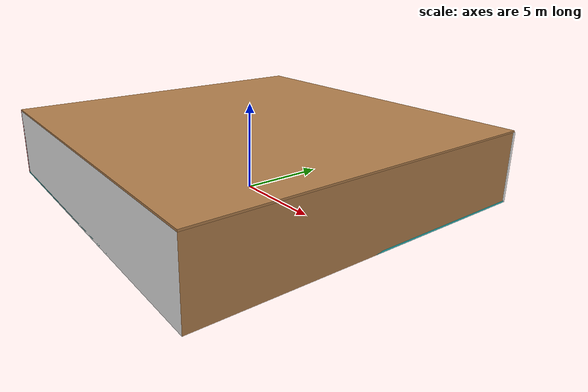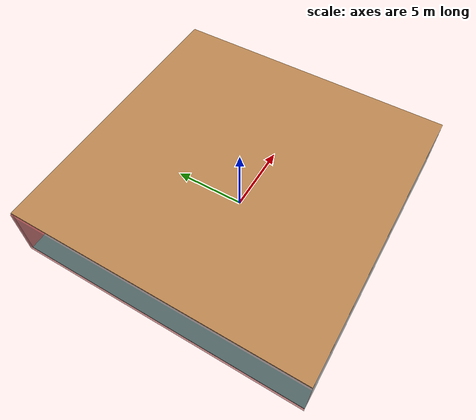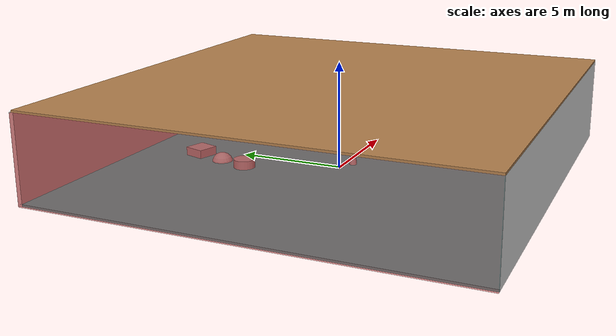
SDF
<sdf version="1.4">
 <world name="default">
  <physics type="ode">
   <max_step_size>0.001</max_step_size>
   <real_time_factor>1</real_time_factor>
   <real_time_update_rate>1000</real_time_update_rate>
   <gravity>0 0 -9.8</gravity>
  </physics>
  <scene><ambient>0.4 0.4 0.4 1</ambient><background>0.7 0.7 0.7 1</background><shadows>1</shadows></scene>
  <model name="Surrounding">
   <static>1</static>
   <link name="Ceiling">
    <collision name="Ceiling_Collision"><geometry><box><size>20 20 0.1</size></box></geometry></collision>
    <visual name="Ceiling_Visual">
     <geometry><box><size>20 20 0.1</size></box></geometry>
     <material>
      <script><uri>file://media/materials/scripts/gazebo.material</uri><name>Gazebo/WoodFloor</name></script>
     </material>
    </visual>
    <pose>0 0 4.05 0 0 0</pose>
   </link>
   <link name="Wall_South">
    <collision name="Wall_South_Collision">
     <geometry><box><size>20 0 4</size></box></geometry>
     <pose>0 0 2 0 -0 0</pose>
    </collision>
    <visual name="Wall_South_Visual">
     <pose>0 0 2 0 -0 0</pose>
     <geometry><box><size>20 0 4</size></box></geometry>
     <material>
      <script><uri>file://media/materials/scripts/gazebo.material</uri><name>Gazebo/White</name></script>
     </material>
    </visual>
    <velocity_decay><linear>0</linear><angular>0</angular></velocity_decay>
    <pose>0 -10 0 0 -0 0</pose>
   </link>
   <link name="Wall_East">
    <collision name="Wall_21_Collision">
     <geometry><box><size>20 0 4</size></box></geometry>
     <pose>0 0 2 0 -0 0</pose>
    </collision>
    <visual name="Wall_21_Visual">
     <pose>0 0 2 0 -0 0</pose>
     <geometry><box><size>20 0 4</size></box></geometry>
     <material>
      <script><uri>file://media/materials/scripts/gazebo.material</uri><name>Gazebo/WoodFloor</name></script>
     </material>
    </visual>
    <velocity_decay><linear>0</linear><angular>0</angular></velocity_decay>
    <pose>10 0 0 0 -0 1.5708</pose>
   </link>
   <link name="Wall_North">
    <collision name="Wall_22_Collision">
     <geometry><box><size>20 0.2 4</size></box></geometry>
     <pose>0 0 2 0 -0 0</pose>
    </collision>
    <visual name="Wall_22_Visual">
     <pose>0 0 2 0 -0 0</pose>
     <geometry><box><size>20 0.2 4</size></box></geometry>
     <material>
      <script><uri>file://media/materials/scripts/gazebo.material</uri><name>Gazebo/WhiteGlow</name></script>
     </material>
    </visual>
    <velocity_decay><linear>0</linear><angular>0</angular></velocity_decay>
    <pose>0 10 0 0 -0 0</pose>
   </link>
   <link name="Wall_West">
    <collision name="Wall_23_Collision">
     <geometry><box><size>20 0.2 4</size></box></geometry>
     <pose>0 0 2 0 -0 0</pose>
    </collision>
    <visual name="Wall_23_Visual">
     <pose>0 0 2 0 -0 0</pose>
     <geometry><box><size>20 0.2 4</size></box></geometry>
     <material>
      <script><uri>file://media/materials/scripts/gazebo.material</uri><name>Gazebo/RedTransparent</name></script>
     </material>
    </visual>
    <velocity_decay><linear>0</linear><angular>0</angular></velocity_decay>
    <pose>-10 0 0 0 0 -1.5708</pose>
   </link>
   <link name="Ground_link">
    <collision name="collision">
     <pose>0 0 .05 0 -0 0</pose>
     <geometry><box><size>20 20 0.1</size></box></geometry>
    </collision>
    <visual name="visual">
     <pose>0 0 .05 0 -0 0</pose>
     <geometry><box><size>20 20 0.1</size></box></geometry>
     <material>
      <script><uri>file://media/materials/scripts/gazebo.material</uri><name>Gazebo/TurquoiseGlow</name></script>
     </material>
    </visual>
   </link>
   <static>1</static>
  </model>
  <spherical_coordinates>
   <surface_model>EARTH_WGS84</surface_model>
   <latitude_deg>0</latitude_deg>
   <longitude_deg>0</longitude_deg>
   <elevation>0</elevation>
   <heading_deg>0</heading_deg>
  </spherical_coordinates>
  <light name="lightball_0" type="diffuse">
   <diffuse>0.8 0.8 0.8 1</diffuse>
   <specular>0.2 0.2 0.2 1</specular>
   <attenuation>
    <range>100</range>
    <constant>0.7</constant>
    <linear>0.01</linear>
    <quadratic>0.001</quadratic>
   </attenuation>
   <direction>-0.5 0.1 -0.9</direction>
   <pose>-0.253668050655 -0.817846504832 3.82804158237 0 0 0</pose>
  </light>
  <light name="lightball_1" type="diffuse">
   <diffuse>0.8 0.8 0.8 1</diffuse>
   <specular>0.2 0.2 0.2 1</specular>
   <attenuation>
    <range>100</range>
    <constant>0.7</constant>
    <linear>0.01</linear>
    <quadratic>0.001</quadratic>
   </attenuation>
   <direction>-0.5 0.1 -0.9</direction>
   <pose>-9.08003967556 3.5081120826 3.03444481424 0 0 0</pose>
  </light>
  <light name="lightball_2" type="diffuse">
   <diffuse>0.8 0.8 0.8 1</diffuse>
   <specular>0.2 0.2 0.2 1</specular>
   <attenuation>
    <range>100</range>
    <constant>0.7</constant>
    <linear>0.01</linear>
    <quadratic>0.001</quadratic>
   </attenuation>
   <direction>-0.5 0.1 -0.9</direction>
   <pose>-8.6095262328 6.93349329406 3.20327024749 0 0 0</pose>
  </light>
  <light name="lightball_3" type="diffuse">
   <diffuse>0.8 0.8 0.8 1</diffuse>
   <specular>0.2 0.2 0.2 1</specular>
   <attenuation>
    <range>100</range>
    <constant>0.7</constant>
    <linear>0.01</linear>
    <quadratic>0.001</quadratic>
   </attenuation>
   <direction>-0.5 0.1 -0.9</direction>
   <pose>7.5538057444 6.76337775215 2.80644446523 0 0 0</pose>
  </light>
  <light name="lightball_4" type="diffuse">
   <diffuse>0.8 0.8 0.8 1</diffuse>
   <specular>0.2 0.2 0.2 1</specular>
   <attenuation>
    <range>100</range>
    <constant>0.7</constant>
    <linear>0.01</linear>
    <quadratic>0.001</quadratic>
   </attenuation>
   <direction>-0.5 0.1 -0.9</direction>
   <pose>-6.55019518387 2.82855031341 1.95471982923 0 0 0</pose>
  </light>
  <light name="lightball_5" type="diffuse">
   <diffuse>0.8 0.8 0.8 1</diffuse>
   <specular>0.2 0.2 0.2 1</specular>
   <attenuation>
    <range>100</range>
    <constant>0.7</constant>
    <linear>0.01</linear>
    <quadratic>0.001</quadratic>
   </attenuation>
   <direction>-0.5 0.1 -0.9</direction>
   <pose>5.30359559441 7.0451860124 2.50986170341 0 0 0</pose>
  </light>
  <include>
   <uri>model://textured_shapes</uri>
   <pose>-1.52493397859 5.38670440336 0 0 0 2.84201023585</pose>
  </include>
  <include>
   <uri>model://construction_cone</uri>
   <pose>0.422296444656 -0.530248080333 0 0 0 1.0048518261</pose>
  </include>
  <include>
   <uri>model://robocup_3Dsim_goal</uri>
   <pose>5.48121960039 7.81989681474 0 0 0 0.562033912588</pose>
  </include>
 </world>
</sdf>

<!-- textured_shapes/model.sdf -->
<sdf version="1.6">
  <model name="textured_shapes">
    <pose>0 0 0.5 0 0 0</pose>
    <link name="box">
      <pose>0 -1.5 0 0 0 0</pose>
      <collision name="collision">
        <geometry>
          <box>
            <size>1 1 1</size>
          </box>
        </geometry>
      </collision>
      <visual name="visual">
        <geometry>
          <box>
            <size>1 1 1</size>
          </box>
        </geometry>
        <material>
          <script>
            <uri>model://../model_source/models/textured_shapes/materials/scripts</uri>
            <uri>model://../model_source/models/textured_shapes/materials/textures</uri>
            <name>TexturedShape/Squares</name>
          </script>
        </material>
      </visual>
    </link>
    <link name="sphere">
      <collision name="collision">
        <geometry>
          <sphere>
            <radius>0.5</radius>
          </sphere>
        </geometry>
      </collision>
      <visual name="visual">
        <geometry>
          <sphere>
            <radius>0.5</radius>
          </sphere>
        </geometry>
        <material>
          <script>
            <uri>model://../model_source/models/textured_shapes/materials/scripts</uri>
            <uri>model://../model_source/models/textured_shapes/materials/textures</uri>
            <name>TexturedShape/Squares</name>
          </script>
        </material>
      </visual>
    </link>
    <link name="cylinder">
      <pose>0 1.5 0 0 0 0</pose>
      <collision name="collision">
        <geometry>
          <cylinder>
            <radius>0.5</radius>
            <length>1</length>
          </cylinder>
        </geometry>
      </collision>
      <visual name="visual">
        <geometry>
          <cylinder>
            <radius>0.5</radius>
            <length>1</length>
          </cylinder>
        </geometry>
        <material>
          <script>
            <uri>model://../model_source/models/textured_shapes/materials/scripts</uri>
            <uri>model://../model_source/models/textured_shapes/materials/textures</uri>
            <name>TexturedShape/Squares</name>
          </script>
        </material>
      </visual>
    </link>
  </model>
</sdf>

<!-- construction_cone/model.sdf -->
<sdf version="1.5">
  <model name="Construction Cone">
    <link name="link">
      <collision name="collision">
        <geometry>
          <mesh>
            <scale>10 10 10</scale>
            <uri>file://isr-testbed/construction_cone/meshes/construction_cone.dae</uri>
          </mesh>
        </geometry>
      </collision>
      <visual name="visual">
        <geometry>
          <mesh>
            <scale>10 10 10</scale>
            <uri>file://isr-testbed/construction_cone/meshes/construction_cone.dae</uri>
          </mesh>
        </geometry>
      </visual>
    </link>
  </model>
</sdf>

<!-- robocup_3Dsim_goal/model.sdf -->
<sdf version="1.5">
  <model name="robocup_3d_goal">
    <static>true</static>
    <link name="left_post">
      <pose>0 1.05 0.45 0 0 0</pose>
      <collision name="collision">
        <geometry>
          <cylinder>
            <radius>0.05</radius>
            <length>0.9</length>
          </cylinder>
        </geometry>
      </collision>
      <visual name="visual">
        <geometry>
          <cylinder>
            <radius>0.05</radius>
            <length>0.9</length>
          </cylinder>
        </geometry>
        <material>
          <script>
            <uri>file://media/materials/scripts/gazebo.material</uri>
            <name>Gazebo/ZincYellow</name>
          </script>
        </material>
      </visual>
    </link>
    <link name="left_support_horiz_lower">
      <pose>0.30 1.05 0.01 0 0 0</pose>
      <collision name="collision">
        <geometry>
          <box>
            <size>0.50 0.02 0.02</size>
          </box>
        </geometry>
      </collision>
      <visual name="visual">
        <geometry>
          <box>
            <size>0.50 0.02 0.02</size>
          </box>
        </geometry>
        <material>
          <script>
            <uri>file://media/materials/scripts/gazebo.material</uri>
            <name>Gazebo/White</name>
          </script>
        </material>
      </visual>
    </link>
    <link name="left_support_horiz_upper">
      <pose>0.30 1.05 0.79 0 0 0</pose>
      <collision name="collision">
        <geometry>
          <box>
            <size>0.50 0.02 0.02</size>
          </box>
        </geometry>
      </collision>
      <visual name="visual">
        <geometry>
          <box>
            <size>0.50 0.02 0.02</size>
          </box>
        </geometry>
        <material>
          <script>
            <uri>file://media/materials/scripts/gazebo.material</uri>
            <name>Gazebo/White</name>
          </script>
        </material>
      </visual>
    </link>
    <link name="left_support_vertical">
      <pose>0.56 1.05 0.4 0 1.5708 0</pose>
      <collision name="collision">
        <geometry>
          <box>
            <size>0.80 0.02 0.02</size>
          </box>
        </geometry>
      </collision>
      <visual name="visual">
        <geometry>
          <box>
            <size>0.80 0.02 0.02</size>
          </box>
        </geometry>
        <material>
          <script>
            <uri>file://media/materials/scripts/gazebo.material</uri>
            <name>Gazebo/White</name>
          </script>
        </material>
      </visual>
    </link>
    <link name="right_support_horiz_lower">
      <pose>0.30 -1.05 0.01 0 0 0</pose>
      <collision name="collision">
        <geometry>
          <box>
            <size>0.50 0.02 0.02</size>
          </box>
        </geometry>
      </collision>
      <visual name="visual">
        <geometry>
          <box>
            <size>0.50 0.02 0.02</size>
          </box>
        </geometry>
        <material>
          <script>
            <uri>file://media/materials/scripts/gazebo.material</uri>
            <name>Gazebo/White</name>
          </script>
        </material>
      </visual>
    </link>
    <link name="right_support_horiz_upper">
      <pose>0.30 -1.05 0.79 0 0 0</pose>
      <collision name="collision">
        <geometry>
          <box>
            <size>0.50 0.02 0.02</size>
          </box>
        </geometry>
      </collision>
      <visual name="visual">
        <geometry>
          <box>
            <size>0.50 0.02 0.02</size>
          </box>
        </geometry>
        <material>
          <script>
            <uri>file://media/materials/scripts/gazebo.material</uri>
            <name>Gazebo/White</name>
          </script>
        </material>
      </visual>
    </link>
    <link name="right_support_vertical">
      <pose>0.56 -1.05 0.4 0 1.5708 0</pose>
      <collision name="collision">
        <geometry>
          <box>
            <size>0.80 0.02 0.02</size>
          </box>
        </geometry>
      </collision>
      <visual name="visual">
        <geometry>
          <box>
            <size>0.80 0.02 0.02</size>
          </box>
        </geometry>
        <material>
          <script>
            <uri>file://media/materials/scripts/gazebo.material</uri>
            <name>Gazebo/White</name>
          </script>
        </material>
      </visual>
    </link>
    <link name="center_support_horiz_lower">
      <pose>0.56 0 0.01 0 1.5708 0</pose>
      <collision name="collision">
        <geometry>
          <box>
            <size>0.02 2.08 0.02</size>
          </box>
        </geometry>
      </collision>
      <visual name="visual">
        <geometry>
          <box>
            <size>0.02 2.08 0.02</size>
          </box>
        </geometry>
        <material>
          <script>
            <uri>file://media/materials/scripts/gazebo.material</uri>
            <name>Gazebo/White</name>
          </script>
        </material>
      </visual>
    </link>
    <link name="center_support_horiz_upper">
      <pose>0.56 0 0.79 0 1.5708 0</pose>
      <collision name="collision">
        <geometry>
          <box>
            <size>0.02 2.08 0.02</size>
          </box>
        </geometry>
      </collision>
      <visual name="visual">
        <geometry>
          <box>
            <size>0.02 2.08 0.02</size>
          </box>
        </geometry>
        <material>
          <script>
            <uri>file://media/materials/scripts/gazebo.material</uri>
            <name>Gazebo/White</name>
          </script>
        </material>
      </visual>
    </link>
    <link name="right_post">
      <pose>0 -1.05 0.45 0 0 0</pose>
      <collision name="collision">
        <geometry>
          <cylinder>
            <radius>0.05</radius>
            <length>0.9</length>
          </cylinder>
        </geometry>
      </collision>
      <visual name="visual">
        <geometry>
          <cylinder>
            <radius>0.05</radius>
            <length>0.9</length>
          </cylinder>
        </geometry>
        <material>
          <script>
            <uri>file://media/materials/scripts/gazebo.material</uri>
            <name>Gazebo/ZincYellow</name>
          </script>
        </material>
      </visual>
    </link>
    <link name="crossbar">
      <pose>0 0 0.85 1.57 1.57 0</pose>
      <collision name="collision">
        <geometry>
          <cylinder>
            <radius>0.05</radius>
            <length>2.0</length>
          </cylinder>
        </geometry>
      </collision>
      <visual name="visual">
        <geometry>
          <cylinder>
            <radius>0.05</radius>
            <length>2.0</length>
          </cylinder>
        </geometry>
        <material>
          <script>
            <uri>file://media/materials/scripts/gazebo.material</uri>
            <name>Gazebo/ZincYellow</name>
          </script>
        </material>
      </visual>
    </link>
    <link name="center_net">
      <pose>0.56 0 0.40 0 0 0</pose>
      <collision name="collision">
        <geometry>
          <box>
            <size>0.01 2.1 0.80</size>
          </box>
        </geometry>
      </collision>
      <visual name="visual">
        <geometry>
          <box>
            <size>0.01 2.1 0.80</size>
          </box>
        </geometry>
        <material>
          <script>
            <uri>model://../model_source/models/robocup09_spl_field/materials/scripts/</uri>
            <uri>model://../model_source/models/robocup09_spl_field/materials/textures/</uri>
            <name>RoboCup/Net</name>
          </script>
        </material>
      </visual>
    </link>
    <link name="left_net">
      <pose>0.30 1.05 0.40 0 0 0</pose>
      <collision name="collision">
        <geometry>
          <box>
            <size>0.50 0.01 0.76</size>
          </box>
        </geometry>
      </collision>
      <visual name="visual">
        <geometry>
          <box>
            <size>0.50 0.01 0.76</size>
          </box>
        </geometry>
        <material>
          <script>
            <uri>model://../model_source/models/robocup09_spl_field/materials/scripts/</uri>
            <uri>model://../model_source/models/robocup09_spl_field/materials/textures/</uri>
            <name>RoboCup/Net</name>
          </script>
        </material>
      </visual>
    </link>
    <link name="right_net">
      <pose>0.30 -1.05 0.40 0 0 0</pose>
      <collision name="collision">
        <geometry>
          <box>
            <size>0.50 0.01 0.76</size>
          </box>
        </geometry>
      </collision>
      <visual name="visual">
        <geometry>
          <box>
            <size>0.50 0.01 0.76</size>
          </box>
        </geometry>
        <material>
          <script>
            <uri>model://../model_source/models/robocup09_spl_field/materials/scripts/</uri>
            <uri>model://../model_source/models/robocup09_spl_field/materials/textures/</uri>
            <name>RoboCup/Net</name>
          </script>
        </material>
      </visual>
    </link>
  </model>
</sdf>
